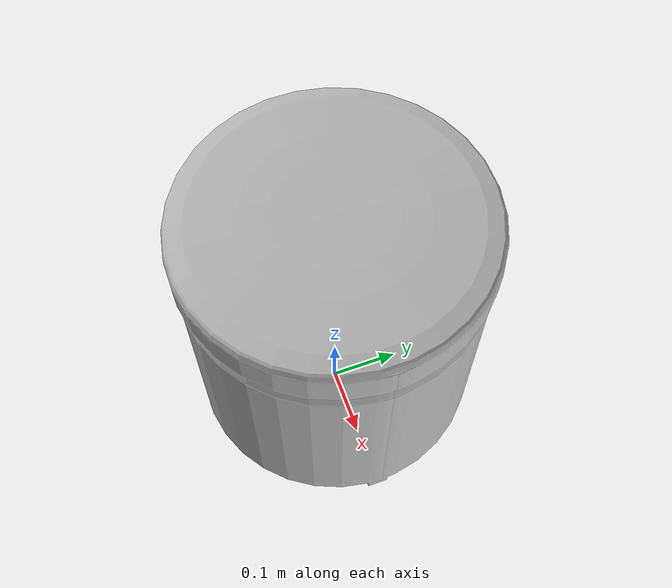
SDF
<?xml version='1.0'?>
<sdf version='1.4'>
  <model name='647'>
    <pose>0 0 0 0 0 0</pose>
    <static>true</static>
    <link name='link'>
      <collision name='collision'>
        <pose>0 0 0 0 0 0</pose>
        <geometry>
          <box>
            <size>0.399976 0.399792 2</size>
          </box>
        </geometry>
      </collision>
      <visual name='visual'>
        <pose>0 0 0 0 0 0</pose>
        <geometry>
          <mesh><uri>model://647/647.dae</uri></mesh>
        </geometry>
      </visual>
    </link>
  </model>
</sdf>
